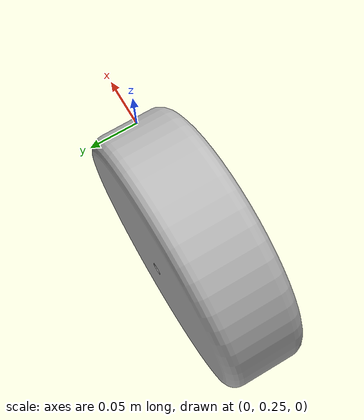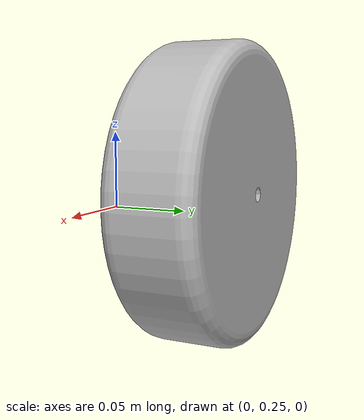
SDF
<?xml version='1.0'?>
	<sdf version='1.4'>
	  <model name='rbe_500_model'>
	    <link name='base_link'>
	      <pose>0 0 0 0 -0 0</pose>
	      <inertial>
		<pose>-0.264565 -0.0662113 0.0664452 0 -0 0</pose>
		<mass>1.58034</mass>
		<inertia>
		  <ixx>0.166304</ixx>
		  <ixy>-0.0400234</ixy>
		  <ixz>-0.0244204</ixz>
		  <iyy>0.181894</iyy>
		  <iyz>-0.00669269</iyz>
		  <izz>0.191948</izz>
		</inertia>
	      </inertial>
	      <collision name='base_link_collision'>
		<pose>0 0 0 0 -0 0</pose>
		<geometry>
		  <mesh>
		    <scale>1 1 1</scale>
		    <uri>model:$(find rbe_500_model)/meshes/base_link.STL</uri>
		  </mesh>
		</geometry>
	      </collision>
	      <visual name='base_link_visual'>
		<pose>0 0 0 0 -0 0</pose>
		<geometry>
		  <mesh>
		    <scale>1 1 1</scale>
		    <uri>model:$(find rbe_500_model)/meshes/base_link.STL</uri>
		  </mesh>
		</geometry>
	      </visual>
	    </link>
	  </model>
	</sdf>
